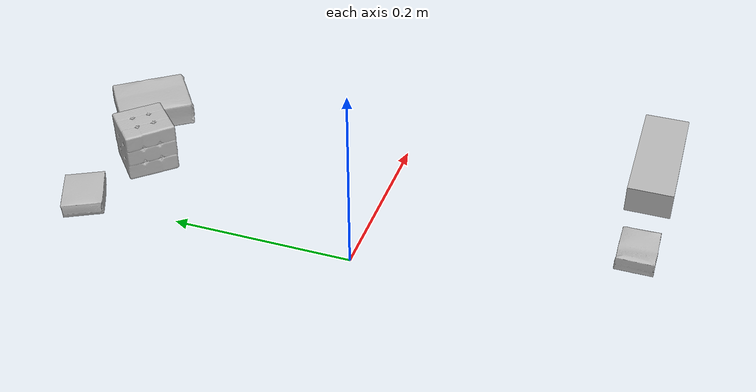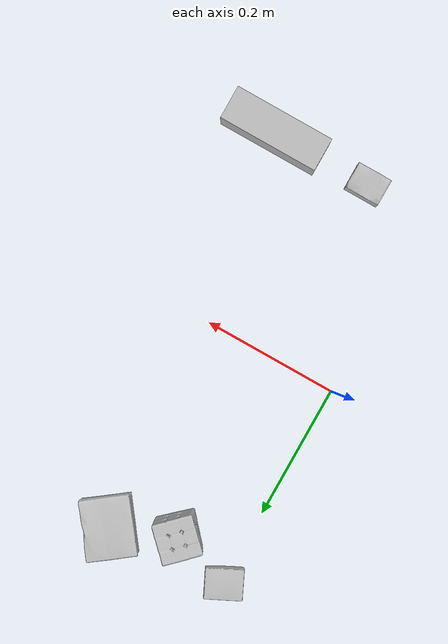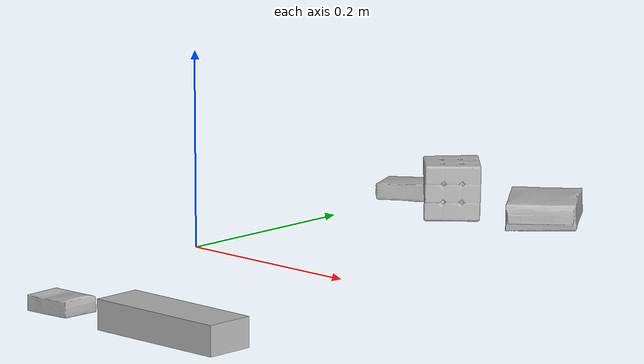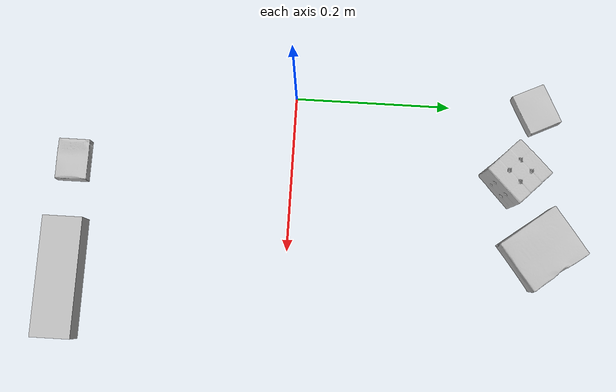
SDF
<?xml version="1.0" ?>
<sdf version="1.4">
  <world name="default">
    <light name="light1" type="point">
      <pose>0 0 1 0 0 0</pose>
      <diffuse>3 3 3 1</diffuse>
      <specular>3 3 3 1</specular>
    </light>
    <light name="light2" type="point">
      <pose>0 0.5 2 0 0 0</pose>
      <diffuse>1 1 1 1</diffuse>
      <specular>1 1 1 1</specular>
    </light>
    <light name="light3" type="point">
      <pose>0 0.5 2 0 0 0</pose>
      <diffuse>3 3 3 1</diffuse>
      <specular>3 3 3 1</specular>
    </light>
    <scene>
      <ambient>0.7 0.7 0.7</ambient>
    </scene>
    <model name="box1">
      <link name="link_box1">
        <collision name="default">
          <geometry>
            <mesh>
              <uri>model://jenga/collision_meshes/collision.obj</uri>
              <scale>1.0 1.0 1.0</scale>
            </mesh>
          </geometry>
          <surface>
            <friction>
              <ode>
                <mu>0.5</mu>
                <mu2>0.5</mu2>
              </ode>
            </friction>
          </surface>
        </collision>
        <visual name="default">
          <geometry>
            <mesh>
              <uri>model://jenga/visual_meshes/visual.dae</uri>
              <scale>1.0 1.0 1.0</scale>
            </mesh>
          </geometry>
        </visual>
        <inertial>
          <mass>0.2062758058309555</mass>
          <pose>-2.502855807051674e-07 -0.00010250010382151231 -4.092339804628864e-05 0.0 -7.342154049184251e-07 0.0</pose>
          <inertia>
            <ixx>5.7081514e-05</ixx>
            <iyy>0.0003867828</iyy>
            <izz>0.00041292355</izz>
            <ixy>0</ixy>
            <ixz>0</ixz>
            <iyz>0</iyz>
          </inertia>
        </inertial>
      </link>
      <pose>0.2500004470348358 -0.2798975110054016 0.014999995008111 -1.1436110079942809e-09 -8.924417872378097e-10 -1.943372609497967e-07</pose>
    </model>
    <model name="box2">
      <link name="link_box2">
        <collision name="default">
          <geometry>
            <mesh>
              <uri>model://cracker_box/collision_meshes/collision.obj</uri>
              <scale>0.25 0.25 0.25</scale>
            </mesh>
          </geometry>
          <surface>
            <friction>
              <ode>
                <mu>0.5</mu>
                <mu2>0.5</mu2>
              </ode>
            </friction>
          </surface>
        </collision>
        <visual name="default">
          <geometry>
            <mesh>
              <uri>model://cracker_box/visual_meshes/visual.dae</uri>
              <scale>0.25 0.25 0.25</scale>
            </mesh>
          </geometry>
        </visual>
        <inertial>
          <mass>0.023937078192830086</mass>
          <pose>0.00023660386796109378 6.358562677633017e-05 -0.00042573839891701937 -0.00031620780222672953 -0.011106490531565828 0.0025467947702904154</pose>
          <inertia>
            <ixx>3.8053279e-06</ixx>
            <iyy>6.2833433e-06</iyy>
            <izz>8.966907e-06</izz>
            <ixy>0</ixy>
            <ixz>0</ixz>
            <iyz>0</iyz>
          </inertia>
        </inertial>
      </link>
      <pose>0.09993371367454529 -0.27984899282455444 0.009120452217757702 -0.011788113789158257 -0.00736709801340044 5.2645564318136384e-05</pose>
    </model>
    <model name="box3">
      <link name="link_box3">
        <collision name="default">
          <geometry>
            <mesh>
              <uri>model://pudding_box/collision_meshes/collision.obj</uri>
              <scale>0.5 0.5 0.5</scale>
            </mesh>
          </geometry>
          <surface>
            <friction>
              <ode>
                <mu>0.5</mu>
                <mu2>0.5</mu2>
              </ode>
            </friction>
          </surface>
        </collision>
        <visual name="default">
          <geometry>
            <mesh>
              <uri>model://pudding_box/visual_meshes/visual.dae</uri>
              <scale>0.5 0.5 0.5</scale>
            </mesh>
          </geometry>
        </visual>
        <inertial>
          <mass>0.06577561050653458</mass>
          <pose>0.0002447410661261529 0.00040339428232982755 -0.00025944135268218815 0.005213102261421096 -0.006603797796883786 0.020079827023418362</pose>
          <inertia>
            <ixx>1.8588986e-05</ixx>
            <iyy>1.2506803e-05</iyy>
            <izz>2.7451497e-05</izz>
            <ixy>0</ixy>
            <ixz>0</ixz>
            <iyz>0</iyz>
          </inertia>
        </inertial>
      </link>
      <pose>-0.00033892254577949643 0.31012481451034546 0.00986290443688631 0.022348679967271325 -0.011391582838543995 -1.1253933912480265</pose>
    </model>
    <model name="box4">
      <link name="link_box4">
        <collision name="default">
          <geometry>
            <mesh>
              <uri>model://gelatin_box/collision_meshes/collision.obj</uri>
              <scale>1.0 1.0 1.0</scale>
            </mesh>
          </geometry>
          <surface>
            <friction>
              <ode>
                <mu>0.5</mu>
                <mu2>0.5</mu2>
              </ode>
            </friction>
          </surface>
        </collision>
        <visual name="default">
          <geometry>
            <mesh>
              <uri>model://gelatin_box/visual_meshes/visual.dae</uri>
              <scale>1.0 1.0 1.0</scale>
            </mesh>
          </geometry>
        </visual>
        <inertial>
          <mass>0.21051041781902313</mass>
          <pose>0.000431961816502735 0.00011156871914863586 -0.0003640321083366871 -0.0010503719683328595 -0.0047558182256164224 0.016440557608480007</pose>
          <inertia>
            <ixx>0.0001486032</ixx>
            <iyy>0.00010614647</iyy>
            <izz>0.00022620716</izz>
            <ixy>0</ixy>
            <ixz>0</ixz>
            <iyz>0</iyz>
          </inertia>
        </inertial>
      </link>
      <pose>0.17996938526630402 0.31985899806022644 0.015168314799666405 0.005597507233872878 -0.007304571846406166 0.639127576779822</pose>
    </model>
    <model name="box5">
      <link name="link_box5">
        <collision name="default">
          <geometry>
            <mesh>
              <uri>model://rubiks_cube/collision_meshes/collision.obj</uri>
              <scale>1.0 1.0 1.0</scale>
            </mesh>
          </geometry>
          <surface>
            <friction>
              <ode>
                <mu>0.5</mu>
                <mu2>0.5</mu2>
              </ode>
            </friction>
          </surface>
        </collision>
        <visual name="default">
          <geometry>
            <mesh>
              <uri>model://rubiks_cube/visual_meshes/visual.dae</uri>
              <scale>1.0 1.0 1.0</scale>
            </mesh>
          </geometry>
        </visual>
        <inertial>
          <mass>0.13810032606124878</mass>
          <pose>2.6721041649580002e-05 5.256967051536776e-05 -7.264316082000732e-06 -0.05467240103362065 -0.09813937396878175 -0.03445717948301123</pose>
          <inertia>
            <ixx>7.63097e-05</ixx>
            <iyy>7.595384e-05</iyy>
            <izz>7.694205e-05</izz>
            <ixy>0</ixy>
            <ixz>0</ixz>
            <iyz>0</iyz>
          </inertia>
        </inertial>
      </link>
      <pose>0.08978945761919022 0.27988991141319275 0.028679002076387405 -4.06210586149614e-09 1.9256959092875073e-08 -0.7966591302747332</pose>
    </model>
  </world>
</sdf>
